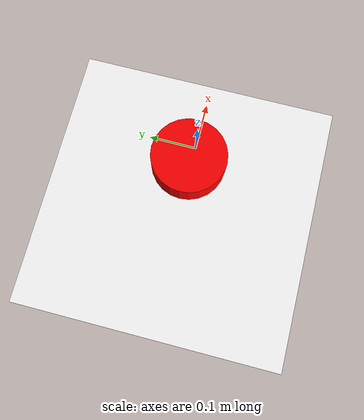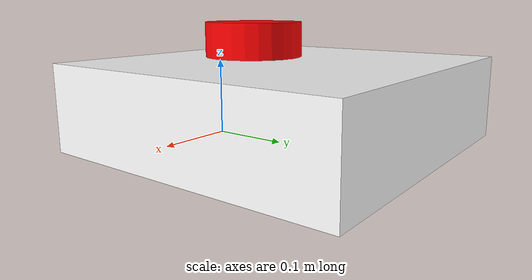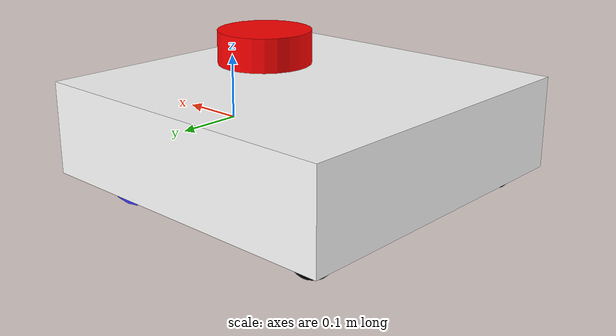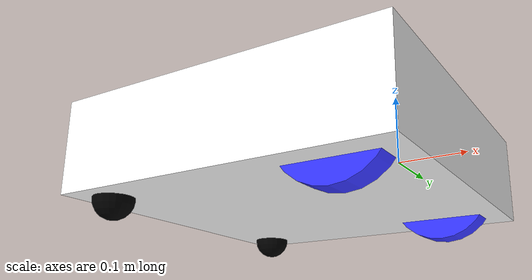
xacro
<?xml version="1.0"?>
<robot xmlns:xacro="http://www.ros.org/wiki/xacro"  name="robot">

    <xacro:arg name="use_ros2_control" default="true"/>
    <xacro:arg name="sim_mode" default="false"/>

    <xacro:include filename="robot_core.xacro" />

    <xacro:if value="$(arg use_ros2_control)">
        <xacro:include filename="ros2_control.xacro"/>
    </xacro:if>
    <xacro:unless value="$(arg use_ros2_control)">
        <xacro:include filename="gazebo_control.xacro"/>
    </xacro:unless>

    <xacro:include filename="lidar.xacro" />

</robot>

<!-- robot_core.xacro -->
<robot xmlns:xacro="http://www.ros.org/wiki/xacro" >

    <xacro:include filename="inertial_macros.xacro" />

    <material name="white">
        <color rgba="1 1 1 1" />
    </material>

    <material name="orange">
        <color rgba="1 0.3 0.1 1" />
    </material>

    <material name="blue">
        <color rgba="0.2 0.2 1 1" />
    </material>

    <material name="black">
        <color rgba="0 0 0 1" />
    </material>

    <material name="red">
        <color rgba="1 0 0 1" />
    </material>

    <!-- ROBOT PARAMETERS -->

    <xacro:property name="wheel_radius" value="0.0825"/>
    <xacro:property name="wheel_thickness" value="0.04"/>
    <xacro:property name="wheel_mass" value="2.0"/>
    <xacro:property name="wheel_offset_x" value="0.1"/>
    <xacro:property name="wheel_offset_y" value="0.19"/>
    <xacro:property name="wheel_offset_z" value="0.05"/>
    <xacro:property name="chassis_height" value="0.138"/>
    <xacro:property name="chassis_length" value="0.5"/>
    <xacro:property name="chassis_width" value="0.5"/>
    <xacro:property name="chassis_mass" value="1.5"/>
    <xacro:property name="caster_wheel_radius" value="0.03"/>
    <xacro:property name="caster_wheel_mass" value="1.0"/>
    <xacro:property name="caster_wheel_offset_x" value="0.45"/>
    <xacro:property name="caster_wheel_offset_y" value="0.20"/>
    <xacro:property name="caster_wheel_offset_z" value="${wheel_offset_z - wheel_radius + caster_wheel_radius}"/>

    <!-- BASE LINK -->

    <link name="base_link">

    </link>

    <!-- BASE FOOTPRINT LINK -->

    <joint name="base_footprint_joint" type="fixed">
        <parent link="base_link"/>
        <child link="base_footprint"/>
        <origin xyz="0 0 0" rpy="0 0 0 "/>
    </joint>

    <link name="base_footprint">
    </link>

    <!-- CHASSIS LINK -->

    <joint name="chassis_joint" type="fixed">
        <parent link="base_link"/>
        <child link="chassis"/>
        <origin xyz="${wheel_offset_x} 0 -${wheel_offset_z}"/>
    </joint>

    <link name="chassis">
        <visual>
            <origin xyz = "-${chassis_length/2} 0 ${chassis_height/2}"/>
            <geometry>
                <box size="${chassis_length} ${chassis_width} ${chassis_height}"/>
            </geometry>
            <material name="white"/>
        </visual>
     <collision>
            <origin xyz = "-${chassis_length/2} 0 ${chassis_height/2}"/>
            <geometry>
                <box size="${chassis_length} ${chassis_width} ${chassis_height}"/>
            </geometry>
        </collision>
        <xacro:inertial_box mass="${chassis_mass}" x="${chassis_length}" y="${chassis_width}" z="${chassis_height}">
            <origin xyz="-${chassis_length/2} 0 ${chassis_height/2}" rpy="0 0 0"/>
        </xacro:inertial_box>
    </link>

    <gazebo reference="chassis">
        <material>Gazebo/White</material>
    </gazebo>

    <!-- LEFT WHEEL LINK -->

    <joint name="left_wheel_joint" type="continuous">
        <parent link="base_link"/>
        <child link="left_wheel"/>
        <origin xyz="0 ${wheel_offset_y} 0" rpy="-${pi/2} 0 0"/>
        <axis xyz="0 0 1"/>
    </joint>

    <link name="left_wheel">
        <visual>
            <geometry>
                <cylinder radius="${wheel_radius}" length="${wheel_thickness}"/>
            </geometry>
            <material name="blue"/>
        </visual>
         <collision>
            <geometry>
                <sphere radius="${wheel_radius}"/>
            </geometry>
        </collision>
        <xacro:inertial_cylinder mass="${wheel_mass}" length="${wheel_thickness}" radius="${wheel_radius}">
            <origin xyz="0 0 0" rpy="0 0 0 "/>
        </xacro:inertial_cylinder>
    </link>

    <gazebo reference="left_wheel">
        <material>Gazebo/Blue</material>
    </gazebo>

    <!-- RIGHT WHEEL LINK -->

    <joint name="right_wheel_joint" type="continuous">
        <parent link="base_link"/>
        <child link="right_wheel"/>
        <origin xyz="0 -${wheel_offset_y} 0" rpy="${pi/2} 0 0"/>
        <axis xyz="0 0 -1"/>
    </joint>

    <link name="right_wheel">
        <visual>
            <geometry>
                <cylinder radius="${wheel_radius}" length="${wheel_thickness}"/>
            </geometry>
            <material name="blue"/>
        </visual>
        <collision>
            <geometry>
                <sphere radius="${wheel_radius}"/>
            </geometry>
        </collision>
        <xacro:inertial_cylinder mass="${wheel_mass}" length="${wheel_thickness}" radius="${wheel_radius}">
            <origin xyz="0 0 0" rpy="0 0 0 "/>
        </xacro:inertial_cylinder>
    </link>

    <gazebo reference="right_wheel">
        <material>Gazebo/Blue</material>
    </gazebo>

    <!-- LEFT CASTER WHEEL -->

    <joint name="left_caster_wheel_joint" type="fixed">
        <parent link="chassis"/>
        <child link="left_caster_wheel"/>
        <origin xyz="-${caster_wheel_offset_x} ${caster_wheel_offset_y} ${caster_wheel_offset_z}"/>
    </joint>

    <link name="left_caster_wheel">
        <visual>
            <geometry>
                <sphere radius="${caster_wheel_radius}"/>
            </geometry>
            <material name="black"/>
        </visual>
        <collision>
            <geometry>
                <sphere radius="${caster_wheel_radius}"/>
            </geometry>
        </collision>
        <xacro:inertial_sphere mass="${caster_wheel_mass}" radius="${caster_wheel_radius}">
            <origin xyz="0 0 0" rpy="0 0 0 "/>
        </xacro:inertial_sphere>
    </link>

    <gazebo reference="left_caster_wheel">
        <material>Gazebo/Black</material>
        <mu1 value="0.001"/>
        <mu2 value="0.001"/>
    </gazebo>

    <!-- RIGHT CASTER WHEEL -->

    <joint name="right_caster_wheel_joint" type="fixed">
        <parent link="chassis"/>
        <child link="right_caster_wheel"/>
        <origin xyz="-${caster_wheel_offset_x} -${caster_wheel_offset_y} ${caster_wheel_offset_z}"/>
    </joint>

    <link name="right_caster_wheel">
        <visual>
            <geometry>
                <sphere radius="${caster_wheel_radius}"/>
            </geometry>
            <material name="black"/>
        </visual>
        <collision>
            <geometry>
                <sphere radius="${caster_wheel_radius}"/>
            </geometry>
        </collision>
        <xacro:inertial_sphere mass="${caster_wheel_mass}" radius="${caster_wheel_radius}">
            <origin xyz="0 0 0" rpy="0 0 0 "/>
        </xacro:inertial_sphere>
    </link>

    <gazebo reference="right_caster_wheel">
        <material>Gazebo/Black</material>
        <mu1 value="0.001"/>
        <mu2 value="0.001"/>
    </gazebo>

</robot>

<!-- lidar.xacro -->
<robot xmlns:xacro="http://www.ros.org/wiki/xacro"  >

    <joint name="laser_joint" type="fixed">
        <parent link="chassis"/>
        <child link="laser_frame"/>
        <origin xyz="-0.171 0 0.175" rpy="0 0 0"/>
    </joint>

    <link name="laser_frame">
        <visual>
            <geometry>
                <cylinder radius="0.07" length="0.05"/>
            </geometry>
            <material name="red"/>
        </visual>
         <collision>
            <geometry>
                <cylinder radius="0.07" length="0.05"/>
            </geometry>
        </collision>
        <xacro:inertial_cylinder mass="0.1" length="0.05" radius="0.1">
            <origin xyz="0 0 0" rpy="0 0 0 "/>
        </xacro:inertial_cylinder>
    </link>

    <!-- Gazebo Harmonic (ros_gz) lidar sensor.
         The plugin is replaced by the native gz sensor definition.
         ros_gz_bridge bridges /scan (GZ -> ROS) in the launch file. -->
    <gazebo reference="laser_frame">
        <material>Gazebo/Red</material>
        <sensor name="laser" type="gpu_lidar">
            <pose>0 0 0 0 0 0</pose>
            <visualize>true</visualize>
            <update_rate>10</update_rate>
            <topic>scan</topic>
            <frame_id>laser_frame</frame_id>
            <ray>
                <scan>
                    <horizontal>
                        <samples>360</samples>
                        <min_angle>-3.14</min_angle>
                        <max_angle>3.14</max_angle>
                    </horizontal>
                </scan>
                <range>
                    <min>0.3</min>
                    <max>12</max>
                </range>
            </ray>
        </sensor>
    </gazebo>

</robot>
